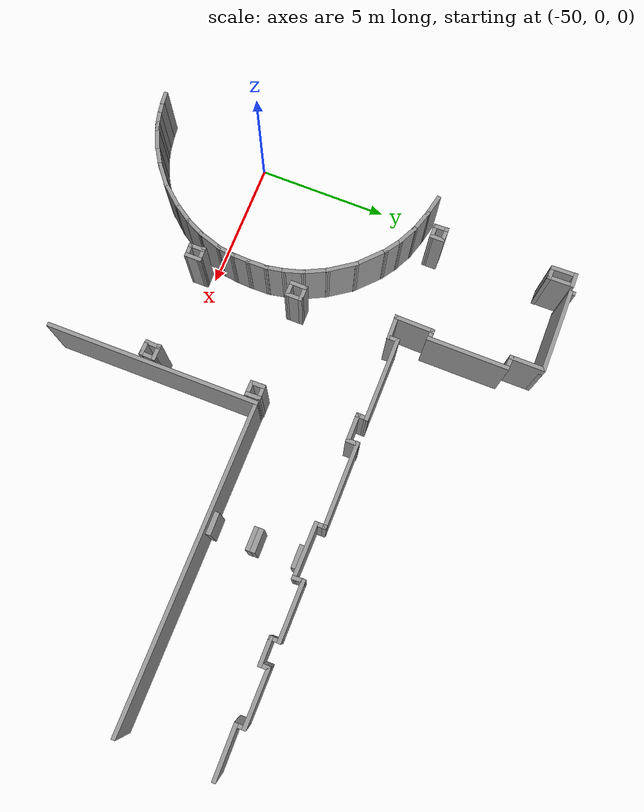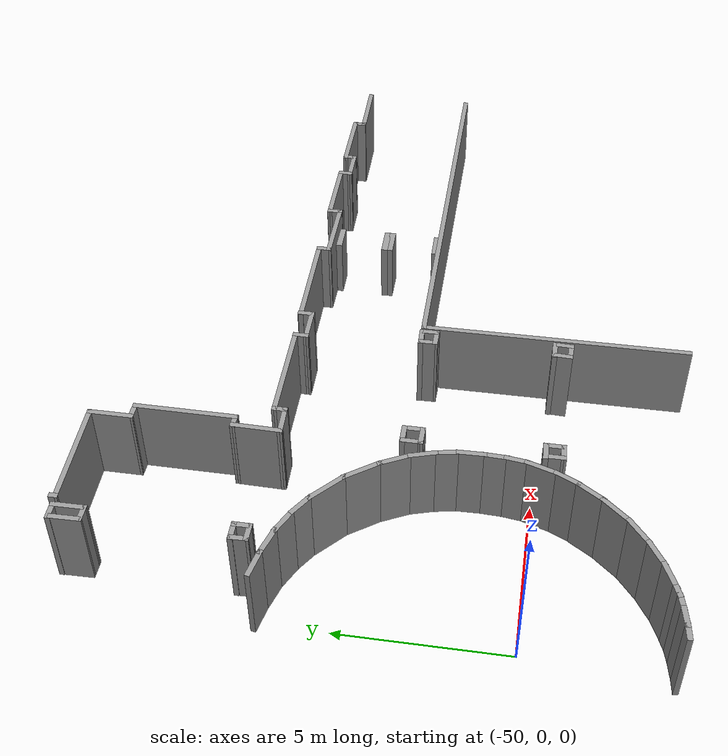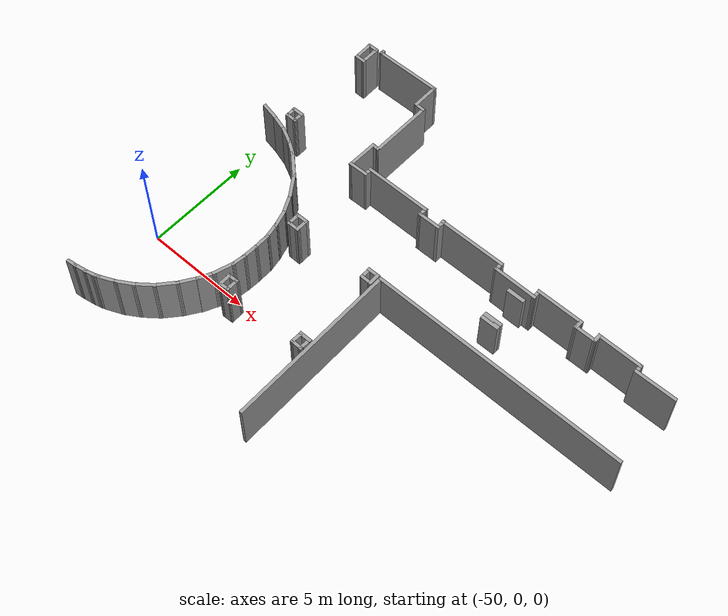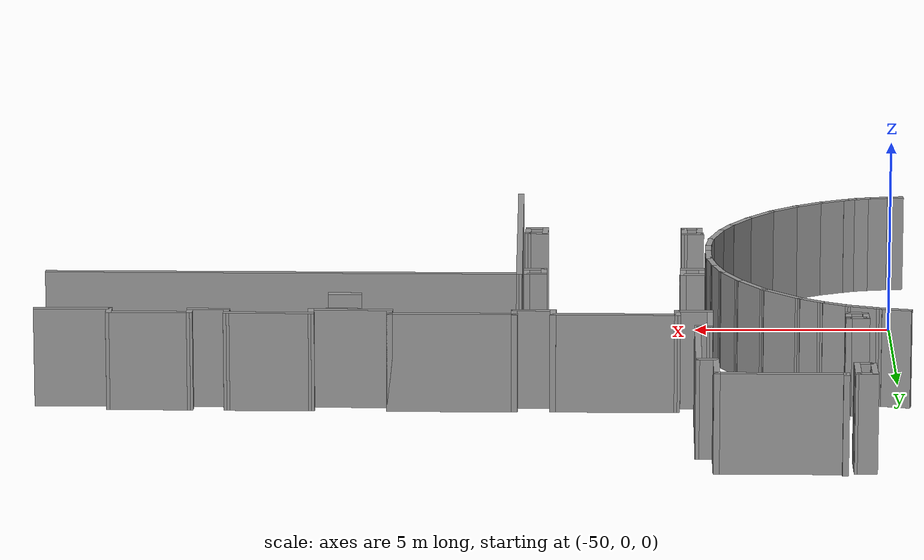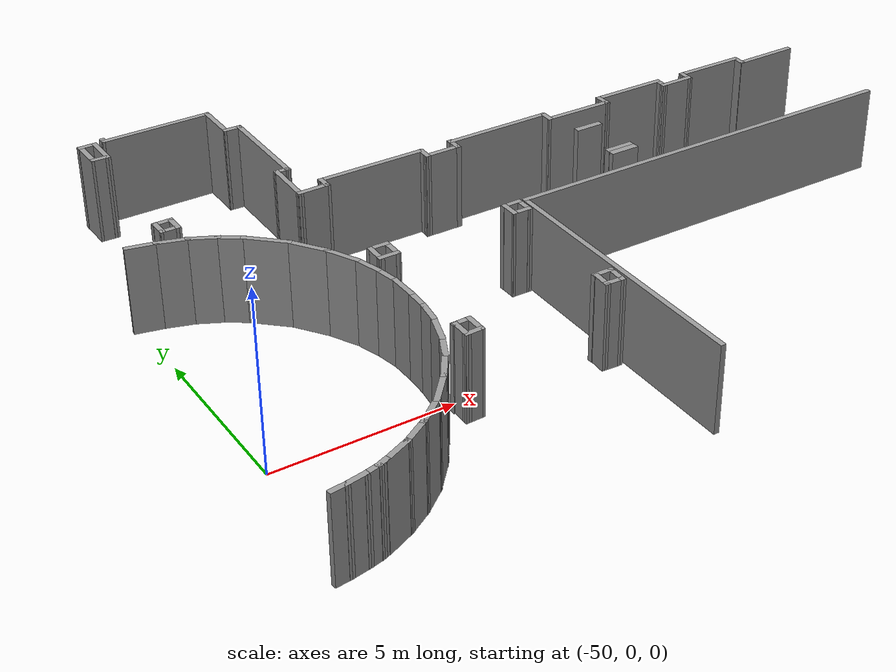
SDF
<sdf version="1.7">
 <model name="TD_n1_largo">
  <pose>-6.3187 -9.13173 0 0 -0 0</pose>
  <link name="Door_4">
   <collision name="Door_4_Collision">
    <geometry><box><size>0.870169 0.2 2</size></box></geometry>
    <pose>0 0 1 0 -0 0</pose>
   </collision>
   <visual name="Door_4_Visual">
    <pose>0 0 1 0 -0 0</pose>
    <geometry><box><size>0.870169 0.2 2</size></box></geometry>
    <material>
     <script><uri>file://media/materials/scripts/gazebo.material</uri><name>Gazebo/Grey</name></script>
    </material>
   </visual>
   <pose>-29.8088 14.4548 0 0 -0 0</pose>
  </link>
  <link name="Door_5">
   <collision name="Door_5_Collision">
    <geometry><box><size>0.870169 0.2 2</size></box></geometry>
    <pose>0 0 1 0 -0 0</pose>
   </collision>
   <visual name="Door_5_Visual">
    <pose>0 0 1 0 -0 0</pose>
    <geometry><box><size>0.870169 0.2 2</size></box></geometry>
    <material>
     <script><uri>file://media/materials/scripts/gazebo.material</uri><name>Gazebo/Grey</name></script>
    </material>
   </visual>
   <pose>-29.8146 14.6172 0 0 0 -3.13804</pose>
  </link>
  <link name="Door_6">
   <collision name="Door_6_Collision">
    <geometry><box><size>0.844427 0.2 2</size></box></geometry>
    <pose>0 0 1 0 -0 0</pose>
   </collision>
   <visual name="Door_6_Visual">
    <pose>0 0 1 0 -0 0</pose>
    <geometry><box><size>0.844427 0.2 2</size></box></geometry>
    <material>
     <script><uri>file://media/materials/scripts/gazebo.material</uri><name>Gazebo/Grey</name></script>
    </material>
   </visual>
   <pose>-29.8142 16.1237 0 0 -0 0</pose>
  </link>
  <link name="Door_7">
   <collision name="Door_7_Collision">
    <geometry><box><size>0.837107 0.2 2</size></box></geometry>
    <pose>0 0 1 0 -0 0</pose>
   </collision>
   <visual name="Door_7_Visual">
    <pose>0 0 1 0 -0 0</pose>
    <geometry><box><size>0.837107 0.2 2</size></box></geometry>
    <material>
     <script><uri>file://media/materials/scripts/gazebo.material</uri><name>Gazebo/Grey</name></script>
    </material>
   </visual>
   <pose>-29.8009 12.9774 0 0 -0 -3.12725</pose>
  </link>
  <link name="Wall_180">
   <collision name="Wall_180_Collision">
    <geometry><box><size>8.07742 0.15 2.5</size></box></geometry>
    <pose>0 0 1.25 0 -0 0</pose>
   </collision>
   <visual name="Wall_180_Visual">
    <pose>0 0 1.25 0 -0 0</pose>
    <geometry><box><size>8.07742 0.15 2.5</size></box></geometry>
    <material>
     <script><uri>file://media/materials/scripts/gazebo.material</uri><name>Gazebo/Grey</name></script>
     <ambient>1 1 1 1</ambient>
    </material>
    <meta><layer>0</layer></meta>
   </visual>
   <pose>-34.1725 8.86391 0 0 -0 1.57459</pose>
  </link>
  <link name="Wall_187">
   <collision name="Wall_187_Collision">
    <geometry><box><size>0.575823 0.15 2.5</size></box></geometry>
    <pose>0 0 1.25 0 -0 0</pose>
   </collision>
   <visual name="Wall_187_Visual">
    <pose>0 0 1.25 0 -0 0</pose>
    <geometry><box><size>0.575823 0.15 2.5</size></box></geometry>
    <material>
     <script><uri>file://media/materials/scripts/gazebo.material</uri><name>Gazebo/Grey</name></script>
     <ambient>1 1 1 1</ambient>
    </material>
    <meta><layer>0</layer></meta>
   </visual>
   <pose>-38.6109 8.87767 0 0 -0 0.026936</pose>
  </link>
  <link name="Wall_188">
   <collision name="Wall_188_Collision">
    <geometry><box><size>0.648152 0.15 2.5</size></box></geometry>
    <pose>0 0 1.25 0 -0 0</pose>
   </collision>
   <visual name="Wall_188_Visual">
    <pose>0 0 1.25 0 -0 0</pose>
    <geometry><box><size>0.648152 0.15 2.5</size></box></geometry>
    <material>
     <script><uri>file://media/materials/scripts/gazebo.material</uri><name>Gazebo/Grey</name></script>
     <ambient>1 1 1 1</ambient>
    </material>
    <meta><layer>0</layer></meta>
   </visual>
   <pose>-38.398 8.63433 0 0 -0 -1.57073</pose>
  </link>
  <link name="Wall_189">
   <collision name="Wall_189_Collision">
    <geometry><box><size>0.54572 0.15 2.5</size></box></geometry>
    <pose>0 0 1.25 0 -0 0</pose>
   </collision>
   <visual name="Wall_189_Visual">
    <pose>0 0 1.25 0 -0 0</pose>
    <geometry><box><size>0.54572 0.15 2.5</size></box></geometry>
    <material>
     <script><uri>file://media/materials/scripts/gazebo.material</uri><name>Gazebo/Grey</name></script>
     <ambient>1 1 1 1</ambient>
    </material>
    <meta><layer>0</layer></meta>
   </visual>
   <pose>-38.5957 8.37765 0 0 -0 -3.10315</pose>
  </link>
  <link name="Wall_190">
   <collision name="Wall_190_Collision">
    <geometry><box><size>0.636918 0.15 2.5</size></box></geometry>
    <pose>0 0 1.25 0 -0 0</pose>
   </collision>
   <visual name="Wall_190_Visual">
    <pose>0 0 1.25 0 -0 0</pose>
    <geometry><box><size>0.636918 0.15 2.5</size></box></geometry>
    <material>
     <script><uri>file://media/materials/scripts/gazebo.material</uri><name>Gazebo/Grey</name></script>
     <ambient>1 1 1 1</ambient>
    </material>
    <meta><layer>0</layer></meta>
   </visual>
   <pose>-38.7934 8.61338 0 0 -0 1.5708</pose>
  </link>
  <link name="Wall_234">
   <collision name="Wall_234_Collision">
    <geometry><box><size>0.257684 0.15 2.5</size></box></geometry>
    <pose>0 0 1.25 0 -0 0</pose>
   </collision>
   <visual name="Wall_234_Visual">
    <pose>0 0 1.25 0 -0 0</pose>
    <geometry><box><size>0.257684 0.15 2.5</size></box></geometry>
    <material>
     <script><uri>file://media/materials/scripts/gazebo.material</uri><name>Gazebo/Grey</name></script>
     <ambient>1 1 1 1</ambient>
    </material>
    <meta><layer>0</layer></meta>
   </visual>
   <pose>-42.0849 21.8346 0 0 -0 -1.559</pose>
  </link>
  <link name="Wall_235">
   <collision name="Wall_235_Collision">
    <geometry><box><size>3.23741 0.15 2.5</size></box></geometry>
    <pose>0 0 1.25 0 -0 0</pose>
   </collision>
   <visual name="Wall_235_Visual">
    <pose>0 0 1.25 0 -0 0</pose>
    <geometry><box><size>3.23741 0.15 2.5</size></box></geometry>
    <material>
     <script><uri>file://media/materials/scripts/gazebo.material</uri><name>Gazebo/Grey</name></script>
     <ambient>1 1 1 1</ambient>
    </material>
    <meta><layer>0</layer></meta>
   </visual>
   <pose>-40.5406 21.7808 0 0 -0 0</pose>
  </link>
  <link name="Wall_236">
   <collision name="Wall_236_Collision">
    <geometry><box><size>1.35149 0.15 2.5</size></box></geometry>
    <pose>0 0 1.25 0 -0 0</pose>
   </collision>
   <visual name="Wall_236_Visual">
    <pose>0 0 1.25 0 -0 0</pose>
    <geometry><box><size>1.35149 0.15 2.5</size></box></geometry>
    <material>
     <script><uri>file://media/materials/scripts/gazebo.material</uri><name>Gazebo/Grey</name></script>
     <ambient>1 1 1 1</ambient>
    </material>
    <meta><layer>0</layer></meta>
   </visual>
   <pose>-38.9969 21.1801 0 0 -0 -1.5708</pose>
  </link>
  <link name="Wall_237">
   <collision name="Wall_237_Collision">
    <geometry><box><size>0.545258 0.15 2.5</size></box></geometry>
    <pose>0 0 1.25 0 -0 0</pose>
   </collision>
   <visual name="Wall_237_Visual">
    <pose>0 0 1.25 0 -0 0</pose>
    <geometry><box><size>0.545258 0.15 2.5</size></box></geometry>
    <material>
     <script><uri>file://media/materials/scripts/gazebo.material</uri><name>Gazebo/Grey</name></script>
     <ambient>1 1 1 1</ambient>
    </material>
    <meta><layer>0</layer></meta>
   </visual>
   <pose>-38.7995 20.5705 0 0 -0 -0.044556</pose>
  </link>
  <link name="Wall_245">
   <collision name="Wall_245_Collision">
    <geometry><box><size>0.561702 0.15 2.5</size></box></geometry>
    <pose>0 0 1.25 0 -0 0</pose>
   </collision>
   <visual name="Wall_245_Visual">
    <pose>0 0 1.25 0 -0 0</pose>
    <geometry><box><size>0.561702 0.15 2.5</size></box></geometry>
    <material>
     <script><uri>file://media/materials/scripts/gazebo.material</uri><name>Gazebo/Grey</name></script>
     <ambient>1 1 1 1</ambient>
    </material>
    <meta><layer>0</layer></meta>
   </visual>
   <pose>-42.5781 21.755 0 0 -0 0</pose>
  </link>
  <link name="Wall_246">
   <collision name="Wall_246_Collision">
    <geometry><box><size>1.01337 0.15 2.5</size></box></geometry>
    <pose>0 0 1.25 0 -0 0</pose>
   </collision>
   <visual name="Wall_246_Visual">
    <pose>0 0 1.25 0 -0 0</pose>
    <geometry><box><size>1.01337 0.15 2.5</size></box></geometry>
    <material>
     <script><uri>file://media/materials/scripts/gazebo.material</uri><name>Gazebo/Grey</name></script>
     <ambient>1 1 1 1</ambient>
    </material>
    <meta><layer>0</layer></meta>
   </visual>
   <pose>-42.3695 21.3233 0 0 -0 -1.56417</pose>
  </link>
  <link name="Wall_247">
   <collision name="Wall_247_Collision">
    <geometry><box><size>0.544675 0.15 2.5</size></box></geometry>
    <pose>0 0 1.25 0 -0 0</pose>
   </collision>
   <visual name="Wall_247_Visual">
    <pose>0 0 1.25 0 -0 0</pose>
    <geometry><box><size>0.544675 0.15 2.5</size></box></geometry>
    <material>
     <script><uri>file://media/materials/scripts/gazebo.material</uri><name>Gazebo/Grey</name></script>
     <ambient>1 1 1 1</ambient>
    </material>
    <meta><layer>0</layer></meta>
   </visual>
   <pose>-42.5581 20.8974 0 0 -0 3.11261</pose>
  </link>
  <link name="Wall_248">
   <collision name="Wall_248_Collision">
    <geometry><box><size>0.933385 0.15 2.5</size></box></geometry>
    <pose>0 0 1.25 0 -0 0</pose>
   </collision>
   <visual name="Wall_248_Visual">
    <pose>0 0 1.25 0 -0 0</pose>
    <geometry><box><size>0.933385 0.15 2.5</size></box></geometry>
    <material>
     <script><uri>file://media/materials/scripts/gazebo.material</uri><name>Gazebo/Grey</name></script>
     <ambient>1 1 1 1</ambient>
    </material>
    <meta><layer>0</layer></meta>
   </visual>
   <pose>-42.7668 21.2947 0 0 -0 1.58539</pose>
  </link>
  <link name="Wall_255">
   <collision name="Wall_255_Collision">
    <geometry><box><size>0.588563 0.15 2.5</size></box></geometry>
    <pose>0 0 1.25 0 -0 0</pose>
   </collision>
   <visual name="Wall_255_Visual">
    <pose>0 0 1.25 0 -0 0</pose>
    <geometry><box><size>0.588563 0.15 2.5</size></box></geometry>
    <material>
     <script><uri>file://media/materials/scripts/gazebo.material</uri><name>Gazebo/Grey</name></script>
     <ambient>1 1 1 1</ambient>
    </material>
    <meta><layer>0</layer></meta>
   </visual>
   <pose>-42.5487 16.8302 0 0 -0 0</pose>
  </link>
  <link name="Wall_256">
   <collision name="Wall_256_Collision">
    <geometry><box><size>0.57344 0.15 2.5</size></box></geometry>
    <pose>0 0 1.25 0 -0 0</pose>
   </collision>
   <visual name="Wall_256_Visual">
    <pose>0 0 1.25 0 -0 0</pose>
    <geometry><box><size>0.57344 0.15 2.5</size></box></geometry>
    <material>
     <script><uri>file://media/materials/scripts/gazebo.material</uri><name>Gazebo/Grey</name></script>
     <ambient>1 1 1 1</ambient>
    </material>
    <meta><layer>0</layer></meta>
   </visual>
   <pose>-42.3294 16.6185 0 0 -0 -1.5708</pose>
  </link>
  <link name="Wall_257">
   <collision name="Wall_257_Collision">
    <geometry><box><size>0.572519 0.15 2.5</size></box></geometry>
    <pose>0 0 1.25 0 -0 0</pose>
   </collision>
   <visual name="Wall_257_Visual">
    <pose>0 0 1.25 0 -0 0</pose>
    <geometry><box><size>0.572519 0.15 2.5</size></box></geometry>
    <material>
     <script><uri>file://media/materials/scripts/gazebo.material</uri><name>Gazebo/Grey</name></script>
     <ambient>1 1 1 1</ambient>
    </material>
    <meta><layer>0</layer></meta>
   </visual>
   <pose>-42.5407 16.408 0 0 -0 3.13605</pose>
  </link>
  <link name="Wall_258">
   <collision name="Wall_258_Collision">
    <geometry><box><size>0.567747 0.15 2.5</size></box></geometry>
    <pose>0 0 1.25 0 -0 0</pose>
   </collision>
   <visual name="Wall_258_Visual">
    <pose>0 0 1.25 0 -0 0</pose>
    <geometry><box><size>0.567747 0.15 2.5</size></box></geometry>
    <material>
     <script><uri>file://media/materials/scripts/gazebo.material</uri><name>Gazebo/Grey</name></script>
     <ambient>1 1 1 1</ambient>
    </material>
    <meta><layer>0</layer></meta>
   </visual>
   <pose>-42.7569 16.618 0 0 -0 1.5946</pose>
  </link>
  <link name="Wall_259">
   <collision name="Wall_259_Collision">
    <geometry><box><size>0.15 0.15 2.5</size></box></geometry>
    <pose>0 0 1.25 0 -0 0</pose>
   </collision>
   <visual name="Wall_259_Visual">
    <pose>0 0 1.25 0 -0 0</pose>
    <geometry><box><size>0.15 0.15 2.5</size></box></geometry>
    <material>
     <script><uri>file://media/materials/scripts/gazebo.material</uri><name>Gazebo/Grey</name></script>
     <ambient>1 1 1 1</ambient>
    </material>
    <meta><layer>0</layer></meta>
   </visual>
   <pose>-42.7619 16.8268 0 0 -0 0</pose>
  </link>
  <link name="Wall_271">
   <collision name="Wall_271_Collision">
    <geometry><box><size>0.613049 0.15 2.5</size></box></geometry>
    <pose>0 0 1.25 0 -0 0</pose>
   </collision>
   <visual name="Wall_271_Visual">
    <pose>0 0 1.25 0 -0 0</pose>
    <geometry><box><size>0.613049 0.15 2.5</size></box></geometry>
    <material>
     <script><uri>file://media/materials/scripts/gazebo.material</uri><name>Gazebo/Grey</name></script>
     <ambient>1 1 1 1</ambient>
    </material>
    <meta><layer>0</layer></meta>
   </visual>
   <pose>-38.5461 12.8584 0 0 -0 0</pose>
  </link>
  <link name="Wall_272">
   <collision name="Wall_272_Collision">
    <geometry><box><size>0.67334 0.15 2.5</size></box></geometry>
    <pose>0 0 1.25 0 -0 0</pose>
   </collision>
   <visual name="Wall_272_Visual">
    <pose>0 0 1.25 0 -0 0</pose>
    <geometry><box><size>0.67334 0.15 2.5</size></box></geometry>
    <material>
     <script><uri>file://media/materials/scripts/gazebo.material</uri><name>Gazebo/Grey</name></script>
     <ambient>1 1 1 1</ambient>
    </material>
    <meta><layer>0</layer></meta>
   </visual>
   <pose>-38.3148 12.5969 0 0 -0 -1.5708</pose>
  </link>
  <link name="Wall_273">
   <collision name="Wall_273_Collision">
    <geometry><box><size>0.618124 0.15 2.5</size></box></geometry>
    <pose>0 0 1.25 0 -0 0</pose>
   </collision>
   <visual name="Wall_273_Visual">
    <pose>0 0 1.25 0 -0 0</pose>
    <geometry><box><size>0.618124 0.15 2.5</size></box></geometry>
    <material>
     <script><uri>file://media/materials/scripts/gazebo.material</uri><name>Gazebo/Grey</name></script>
     <ambient>1 1 1 1</ambient>
    </material>
    <meta><layer>0</layer></meta>
   </visual>
   <pose>-38.5488 12.3378 0 0 -0 3.13182</pose>
  </link>
  <link name="Wall_274">
   <collision name="Wall_274_Collision">
    <geometry><box><size>0.649885 0.15 2.5</size></box></geometry>
    <pose>0 0 1.25 0 -0 0</pose>
   </collision>
   <visual name="Wall_274_Visual">
    <pose>0 0 1.25 0 -0 0</pose>
    <geometry><box><size>0.649885 0.15 2.5</size></box></geometry>
    <material>
     <script><uri>file://media/materials/scripts/gazebo.material</uri><name>Gazebo/Grey</name></script>
     <ambient>1 1 1 1</ambient>
    </material>
    <meta><layer>0</layer></meta>
   </visual>
   <pose>-38.7796 12.5899 0 0 -0 1.55764</pose>
  </link>
  <link name="Wall_276">
   <collision name="Wall_276_Collision">
    <geometry><box><size>0.590536 0.15 2.5</size></box></geometry>
    <pose>0 0 1.25 0 -0 0</pose>
   </collision>
   <visual name="Wall_276_Visual">
    <pose>0 0 1.25 0 -0 0</pose>
    <geometry><box><size>0.590536 0.15 2.5</size></box></geometry>
    <material>
     <script><uri>file://media/materials/scripts/gazebo.material</uri><name>Gazebo/Grey</name></script>
     <ambient>1 1 1 1</ambient>
    </material>
    <meta><layer>0</layer></meta>
   </visual>
   <pose>-34.5978 12.8496 0 0 -0 0.014924</pose>
  </link>
  <link name="Wall_277">
   <collision name="Wall_277_Collision">
    <geometry><box><size>0.597159 0.15 2.5</size></box></geometry>
    <pose>0 0 1.25 0 -0 0</pose>
   </collision>
   <visual name="Wall_277_Visual">
    <pose>0 0 1.25 0 -0 0</pose>
    <geometry><box><size>0.597159 0.15 2.5</size></box></geometry>
    <material>
     <script><uri>file://media/materials/scripts/gazebo.material</uri><name>Gazebo/Grey</name></script>
     <ambient>1 1 1 1</ambient>
    </material>
    <meta><layer>0</layer></meta>
   </visual>
   <pose>-34.3742 12.6294 0 0 -0 -1.55609</pose>
  </link>
  <link name="Wall_278">
   <collision name="Wall_278_Collision">
    <geometry><box><size>0.583961 0.15 2.5</size></box></geometry>
    <pose>0 0 1.25 0 -0 0</pose>
   </collision>
   <visual name="Wall_278_Visual">
    <pose>0 0 1.25 0 -0 0</pose>
    <geometry><box><size>0.583961 0.15 2.5</size></box></geometry>
    <material>
     <script><uri>file://media/materials/scripts/gazebo.material</uri><name>Gazebo/Grey</name></script>
     <ambient>1 1 1 1</ambient>
    </material>
    <meta><layer>0</layer></meta>
   </visual>
   <pose>-34.5879 12.4091 0 0 -0 3.12644</pose>
  </link>
  <link name="Wall_279">
   <collision name="Wall_279_Collision">
    <geometry><box><size>0.577436 0.15 2.5</size></box></geometry>
    <pose>0 0 1.25 0 -0 0</pose>
   </collision>
   <visual name="Wall_279_Visual">
    <pose>0 0 1.25 0 -0 0</pose>
    <geometry><box><size>0.577436 0.15 2.5</size></box></geometry>
    <material>
     <script><uri>file://media/materials/scripts/gazebo.material</uri><name>Gazebo/Grey</name></script>
     <ambient>1 1 1 1</ambient>
    </material>
    <meta><layer>0</layer></meta>
   </visual>
   <pose>-34.8082 12.6261 0 0 -0 1.58618</pose>
  </link>
  <link name="Wall_286">
   <collision name="Wall_286_Collision">
    <geometry><box><size>0.510873 0.15 2.5</size></box></geometry>
    <pose>0 0 1.25 0 -0 0</pose>
   </collision>
   <visual name="Wall_286_Visual">
    <pose>0 0 1.25 0 -0 0</pose>
    <geometry><box><size>0.510873 0.15 2.5</size></box></geometry>
    <material>
     <script><uri>file://media/materials/scripts/gazebo.material</uri><name>Gazebo/Grey</name></script>
     <ambient>1 1 1 1</ambient>
    </material>
    <meta><layer>0</layer></meta>
   </visual>
   <pose>-43.9551 5.04752 0 0 -0 0.116709</pose>
  </link>
  <link name="Wall_287">
   <collision name="Wall_287_Collision">
    <geometry><box><size>0.662484 0.15 2.5</size></box></geometry>
    <pose>0 0 1.25 0 -0 0</pose>
   </collision>
   <visual name="Wall_287_Visual">
    <pose>0 0 1.25 0 -0 0</pose>
    <geometry><box><size>0.662484 0.15 2.5</size></box></geometry>
    <material>
     <script><uri>file://media/materials/scripts/gazebo.material</uri><name>Gazebo/Grey</name></script>
     <ambient>1 1 1 1</ambient>
    </material>
    <meta><layer>0</layer></meta>
   </visual>
   <pose>-43.5238 5.11426 0 0 -0 0.179422</pose>
  </link>
  <link name="Wall_288">
   <collision name="Wall_288_Collision">
    <geometry><box><size>0.534291 0.15 2.5</size></box></geometry>
    <pose>0 0 1.25 0 -0 0</pose>
   </collision>
   <visual name="Wall_288_Visual">
    <pose>0 0 1.25 0 -0 0</pose>
    <geometry><box><size>0.534291 0.15 2.5</size></box></geometry>
    <material>
     <script><uri>file://media/materials/scripts/gazebo.material</uri><name>Gazebo/Grey</name></script>
     <ambient>1 1 1 1</ambient>
    </material>
    <meta><layer>0</layer></meta>
   </visual>
   <pose>-43.085 5.20572 0 0 -0 0.240299</pose>
  </link>
  <link name="Wall_289">
   <collision name="Wall_289_Collision">
    <geometry><box><size>0.389603 0.15 2.5</size></box></geometry>
    <pose>0 0 1.25 0 -0 0</pose>
   </collision>
   <visual name="Wall_289_Visual">
    <pose>0 0 1.25 0 -0 0</pose>
    <geometry><box><size>0.389603 0.15 2.5</size></box></geometry>
    <material>
     <script><uri>file://media/materials/scripts/gazebo.material</uri><name>Gazebo/Grey</name></script>
     <ambient>1 1 1 1</ambient>
    </material>
    <meta><layer>0</layer></meta>
   </visual>
   <pose>-42.7871 5.29594 0 0 -0 0.380506</pose>
  </link>
  <link name="Wall_291">
   <collision name="Wall_291_Collision">
    <geometry><box><size>0.906401 0.15 2.5</size></box></geometry>
    <pose>0 0 1.25 0 -0 0</pose>
   </collision>
   <visual name="Wall_291_Visual">
    <pose>0 0 1.25 0 -0 0</pose>
    <geometry><box><size>0.906401 0.15 2.5</size></box></geometry>
    <material>
     <script><uri>file://media/materials/scripts/gazebo.material</uri><name>Gazebo/Grey</name></script>
     <ambient>1 1 1 1</ambient>
    </material>
    <meta><layer>0</layer></meta>
   </visual>
   <pose>-42.3342 5.4858 0 0 -0 0.420872</pose>
  </link>
  <link name="Wall_292">
   <collision name="Wall_292_Collision">
    <geometry><box><size>0.899943 0.15 2.5</size></box></geometry>
    <pose>0 0 1.25 0 -0 0</pose>
   </collision>
   <visual name="Wall_292_Visual">
    <pose>0 0 1.25 0 -0 0</pose>
    <geometry><box><size>0.899943 0.15 2.5</size></box></geometry>
    <material>
     <script><uri>file://media/materials/scripts/gazebo.material</uri><name>Gazebo/Grey</name></script>
     <ambient>1 1 1 1</ambient>
    </material>
    <meta><layer>0</layer></meta>
   </visual>
   <pose>-41.6701 5.83757 0 0 -0 0.553953</pose>
  </link>
  <link name="Wall_293">
   <collision name="Wall_293_Collision">
    <geometry><box><size>0.977661 0.15 2.5</size></box></geometry>
    <pose>0 0 1.25 0 -0 0</pose>
   </collision>
   <visual name="Wall_293_Visual">
    <pose>0 0 1.25 0 -0 0</pose>
    <geometry><box><size>0.977661 0.15 2.5</size></box></geometry>
    <material>
     <script><uri>file://media/materials/scripts/gazebo.material</uri><name>Gazebo/Grey</name></script>
     <ambient>1 1 1 1</ambient>
    </material>
    <meta><layer>0</layer></meta>
   </visual>
   <pose>-41.029 6.29455 0 0 -0 0.678463</pose>
  </link>
  <link name="Wall_294">
   <collision name="Wall_294_Collision">
    <geometry><box><size>1.07287 0.15 2.5</size></box></geometry>
    <pose>0 0 1.25 0 -0 0</pose>
   </collision>
   <visual name="Wall_294_Visual">
    <pose>0 0 1.25 0 -0 0</pose>
    <geometry><box><size>1.07287 0.15 2.5</size></box></geometry>
    <material>
     <script><uri>file://media/materials/scripts/gazebo.material</uri><name>Gazebo/Grey</name></script>
     <ambient>1 1 1 1</ambient>
    </material>
    <meta><layer>0</layer></meta>
   </visual>
   <pose>-40.4044 6.90275 0 0 -0 0.855988</pose>
  </link>
  <link name="Wall_295">
   <collision name="Wall_295_Collision">
    <geometry><box><size>0.928706 0.15 2.5</size></box></geometry>
    <pose>0 0 1.25 0 -0 0</pose>
   </collision>
   <visual name="Wall_295_Visual">
    <pose>0 0 1.25 0 -0 0</pose>
    <geometry><box><size>0.928706 0.15 2.5</size></box></geometry>
    <material>
     <script><uri>file://media/materials/scripts/gazebo.material</uri><name>Gazebo/Grey</name></script>
     <ambient>1 1 1 1</ambient>
    </material>
    <meta><layer>0</layer></meta>
   </visual>
   <pose>-39.8882 7.5767 0 0 -0 0.989819</pose>
  </link>
  <link name="Wall_297">
   <collision name="Wall_297_Collision">
    <geometry><box><size>0.824345 0.15 2.5</size></box></geometry>
    <pose>0 0 1.25 0 -0 0</pose>
   </collision>
   <visual name="Wall_297_Visual">
    <pose>0 0 1.25 0 -0 0</pose>
    <geometry><box><size>0.824345 0.15 2.5</size></box></geometry>
    <material>
     <script><uri>file://media/materials/scripts/gazebo.material</uri><name>Gazebo/Grey</name></script>
     <ambient>1 1 1 1</ambient>
    </material>
    <meta><layer>0</layer></meta>
   </visual>
   <pose>-39.4974 8.23667 0 0 -0 1.12469</pose>
  </link>
  <link name="Wall_298">
   <collision name="Wall_298_Collision">
    <geometry><box><size>1.01156 0.15 2.5</size></box></geometry>
    <pose>0 0 1.25 0 -0 0</pose>
   </collision>
   <visual name="Wall_298_Visual">
    <pose>0 0 1.25 0 -0 0</pose>
    <geometry><box><size>1.01156 0.15 2.5</size></box></geometry>
    <material>
     <script><uri>file://media/materials/scripts/gazebo.material</uri><name>Gazebo/Grey</name></script>
     <ambient>1 1 1 1</ambient>
    </material>
    <meta><layer>0</layer></meta>
   </visual>
   <pose>-39.2197 8.95082 0 0 -0 1.25875</pose>
  </link>
  <link name="Wall_299">
   <collision name="Wall_299_Collision">
    <geometry><box><size>0.724184 0.15 2.5</size></box></geometry>
    <pose>0 0 1.25 0 -0 0</pose>
   </collision>
   <visual name="Wall_299_Visual">
    <pose>0 0 1.25 0 -0 0</pose>
    <geometry><box><size>0.724184 0.15 2.5</size></box></geometry>
    <material>
     <script><uri>file://media/materials/scripts/gazebo.material</uri><name>Gazebo/Grey</name></script>
     <ambient>1 1 1 1</ambient>
    </material>
    <meta><layer>0</layer></meta>
   </visual>
   <pose>-39.0478 9.64513 0 0 -0 1.43216</pose>
  </link>
  <link name="Wall_300">
   <collision name="Wall_300_Collision">
    <geometry><box><size>0.772138 0.15 2.5</size></box></geometry>
    <pose>0 0 1.25 0 -0 0</pose>
   </collision>
   <visual name="Wall_300_Visual">
    <pose>0 0 1.25 0 -0 0</pose>
    <geometry><box><size>0.772138 0.15 2.5</size></box></geometry>
    <material>
     <script><uri>file://media/materials/scripts/gazebo.material</uri><name>Gazebo/Grey</name></script>
     <ambient>1 1 1 1</ambient>
    </material>
    <meta><layer>0</layer></meta>
   </visual>
   <pose>-38.9949 10.2403 0 0 -0 1.52827</pose>
  </link>
  <link name="Wall_301">
   <collision name="Wall_301_Collision">
    <geometry><box><size>0.851424 0.15 2.5</size></box></geometry>
    <pose>0 0 1.25 0 -0 0</pose>
   </collision>
   <visual name="Wall_301_Visual">
    <pose>0 0 1.25 0 -0 0</pose>
    <geometry><box><size>0.851424 0.15 2.5</size></box></geometry>
    <material>
     <script><uri>file://media/materials/scripts/gazebo.material</uri><name>Gazebo/Grey</name></script>
     <ambient>1 1 1 1</ambient>
    </material>
    <meta><layer>0</layer></meta>
   </visual>
   <pose>-38.9882 10.9015 0 0 -0 1.58966</pose>
  </link>
  <link name="Wall_302">
   <collision name="Wall_302_Collision">
    <geometry><box><size>0.795862 0.15 2.5</size></box></geometry>
    <pose>0 0 1.25 0 -0 0</pose>
   </collision>
   <visual name="Wall_302_Visual">
    <pose>0 0 1.25 0 -0 0</pose>
    <geometry><box><size>0.795862 0.15 2.5</size></box></geometry>
    <material>
     <script><uri>file://media/materials/scripts/gazebo.material</uri><name>Gazebo/Grey</name></script>
     <ambient>1 1 1 1</ambient>
    </material>
    <meta><layer>0</layer></meta>
   </visual>
   <pose>-39.0544 11.5694 0 0 -0 1.75614</pose>
  </link>
  <link name="Wall_303">
   <collision name="Wall_303_Collision">
    <geometry><box><size>0.853043 0.15 2.5</size></box></geometry>
    <pose>0 0 1.25 0 -0 0</pose>
   </collision>
   <visual name="Wall_303_Visual">
    <pose>0 0 1.25 0 -0 0</pose>
    <geometry><box><size>0.853043 0.15 2.5</size></box></geometry>
    <material>
     <script><uri>file://media/materials/scripts/gazebo.material</uri><name>Gazebo/Grey</name></script>
     <ambient>1 1 1 1</ambient>
    </material>
    <meta><layer>0</layer></meta>
   </visual>
   <pose>-39.2131 12.224 0 0 -0 1.85685</pose>
  </link>
  <link name="Wall_305">
   <collision name="Wall_305_Collision">
    <geometry><box><size>1.03748 0.15 2.5</size></box></geometry>
    <pose>0 0 1.25 0 -0 0</pose>
   </collision>
   <visual name="Wall_305_Visual">
    <pose>0 0 1.25 0 -0 0</pose>
    <geometry><box><size>1.03748 0.15 2.5</size></box></geometry>
    <material>
     <script><uri>file://media/materials/scripts/gazebo.material</uri><name>Gazebo/Grey</name></script>
     <ambient>1 1 1 1</ambient>
    </material>
    <meta><layer>0</layer></meta>
   </visual>
   <pose>-39.5094 12.9588 0 0 -0 2.03126</pose>
  </link>
  <link name="Wall_306">
   <collision name="Wall_306_Collision">
    <geometry><box><size>1.21857 0.15 2.5</size></box></geometry>
    <pose>0 0 1.25 0 -0 0</pose>
   </collision>
   <visual name="Wall_306_Visual">
    <pose>0 0 1.25 0 -0 0</pose>
    <geometry><box><size>1.21857 0.15 2.5</size></box></geometry>
    <material>
     <script><uri>file://media/materials/scripts/gazebo.material</uri><name>Gazebo/Grey</name></script>
     <ambient>1 1 1 1</ambient>
    </material>
    <meta><layer>0</layer></meta>
   </visual>
   <pose>-40.011 13.7954 0 0 -0 2.17686</pose>
  </link>
  <link name="Wall_307">
   <collision name="Wall_307_Collision">
    <geometry><box><size>1.31885 0.15 2.5</size></box></geometry>
    <pose>0 0 1.25 0 -0 0</pose>
   </collision>
   <visual name="Wall_307_Visual">
    <pose>0 0 1.25 0 -0 0</pose>
    <geometry><box><size>1.31885 0.15 2.5</size></box></geometry>
    <material>
     <script><uri>file://media/materials/scripts/gazebo.material</uri><name>Gazebo/Grey</name></script>
     <ambient>1 1 1 1</ambient>
    </material>
    <meta><layer>0</layer></meta>
   </visual>
   <pose>-40.7414 14.6345 0 0 -0 2.38776</pose>
  </link>
  <link name="Wall_308">
   <collision name="Wall_308_Collision">
    <geometry><box><size>0.801188 0.15 2.5</size></box></geometry>
    <pose>0 0 1.25 0 -0 0</pose>
   </collision>
   <visual name="Wall_308_Visual">
    <pose>0 0 1.25 0 -0 0</pose>
    <geometry><box><size>0.801188 0.15 2.5</size></box></geometry>
    <material>
     <script><uri>file://media/materials/scripts/gazebo.material</uri><name>Gazebo/Grey</name></script>
     <ambient>1 1 1 1</ambient>
    </material>
    <meta><layer>0</layer></meta>
   </visual>
   <pose>-41.4371 15.2172 0 0 -0 2.54618</pose>
  </link>
  <link name="Wall_309">
   <collision name="Wall_309_Collision">
    <geometry><box><size>0.888875 0.15 2.5</size></box></geometry>
    <pose>0 0 1.25 0 -0 0</pose>
   </collision>
   <visual name="Wall_309_Visual">
    <pose>0 0 1.25 0 -0 0</pose>
    <geometry><box><size>0.888875 0.15 2.5</size></box></geometry>
    <material>
     <script><uri>file://media/materials/scripts/gazebo.material</uri><name>Gazebo/Grey</name></script>
     <ambient>1 1 1 1</ambient>
    </material>
    <meta><layer>0</layer></meta>
   </visual>
   <pose>-42.0371 15.565 0 0 -0 2.67794</pose>
  </link>
  <link name="Wall_310">
   <collision name="Wall_310_Collision">
    <geometry><box><size>0.942116 0.15 2.5</size></box></geometry>
    <pose>0 0 1.25 0 -0 0</pose>
   </collision>
   <visual name="Wall_310_Visual">
    <pose>0 0 1.25 0 -0 0</pose>
    <geometry><box><size>0.942116 0.15 2.5</size></box></geometry>
    <material>
     <script><uri>file://media/materials/scripts/gazebo.material</uri><name>Gazebo/Grey</name></script>
     <ambient>1 1 1 1</ambient>
    </material>
    <meta><layer>0</layer></meta>
   </visual>
   <pose>-42.7458 15.8476 0 0 -0 2.84067</pose>
  </link>
  <link name="Wall_311">
   <collision name="Wall_311_Collision">
    <geometry><box><size>0.880021 0.15 2.5</size></box></geometry>
    <pose>0 0 1.25 0 -0 0</pose>
   </collision>
   <visual name="Wall_311_Visual">
    <pose>0 0 1.25 0 -0 0</pose>
    <geometry><box><size>0.880021 0.15 2.5</size></box></geometry>
    <material>
     <script><uri>file://media/materials/scripts/gazebo.material</uri><name>Gazebo/Grey</name></script>
     <ambient>1 1 1 1</ambient>
    </material>
    <meta><layer>0</layer></meta>
   </visual>
   <pose>-43.4805 16.0432 0 0 -0 2.92551</pose>
  </link>
  <link name="Wall_346">
   <collision name="Wall_346_Collision">
    <geometry><box><size>3.07275 0.15 2.5</size></box></geometry>
    <pose>0 0 1.25 0 -0 0</pose>
   </collision>
   <visual name="Wall_346_Visual">
    <pose>0 0 1.25 0 -0 0</pose>
    <geometry><box><size>3.07275 0.15 2.5</size></box></geometry>
    <material>
     <script><uri>file://media/materials/scripts/gazebo.material</uri><name>Gazebo/Grey</name></script>
     <ambient>1 1 1 1</ambient>
    </material>
    <meta><layer>0</layer></meta>
   </visual>
   <pose>-38.5912 19.1004 0 0 -0 -1.57532</pose>
  </link>
  <link name="Wall_347">
   <collision name="Wall_347_Collision">
    <geometry><box><size>0.43636 0.15 2.5</size></box></geometry>
    <pose>0 0 1.25 0 -0 0</pose>
   </collision>
   <visual name="Wall_347_Visual">
    <pose>0 0 1.25 0 -0 0</pose>
    <geometry><box><size>0.43636 0.15 2.5</size></box></geometry>
    <material>
     <script><uri>file://media/materials/scripts/gazebo.material</uri><name>Gazebo/Grey</name></script>
     <ambient>1 1 1 1</ambient>
    </material>
    <meta><layer>0</layer></meta>
   </visual>
   <pose>-38.7582 17.6477 0 0 -0 3.08048</pose>
  </link>
  <link name="Wall_348">
   <collision name="Wall_348_Collision">
    <geometry><box><size>1.51243 0.15 2.5</size></box></geometry>
    <pose>0 0 1.25 0 -0 0</pose>
   </collision>
   <visual name="Wall_348_Visual">
    <pose>0 0 1.25 0 -0 0</pose>
    <geometry><box><size>1.51243 0.15 2.5</size></box></geometry>
    <material>
     <script><uri>file://media/materials/scripts/gazebo.material</uri><name>Gazebo/Grey</name></script>
     <ambient>1 1 1 1</ambient>
    </material>
    <meta><layer>0</layer></meta>
   </visual>
   <pose>-38.9143 16.9754 0 0 -0 -1.59021</pose>
  </link>
  <link name="Wall_349">
   <collision name="Wall_349_Collision">
    <geometry><box><size>0.952511 0.15 2.5</size></box></geometry>
    <pose>0 0 1.25 0 -0 0</pose>
   </collision>
   <visual name="Wall_349_Visual">
    <pose>0 0 1.25 0 -0 0</pose>
    <geometry><box><size>0.952511 0.15 2.5</size></box></geometry>
    <material>
     <script><uri>file://media/materials/scripts/gazebo.material</uri><name>Gazebo/Grey</name></script>
     <ambient>1 1 1 1</ambient>
    </material>
    <meta><layer>0</layer></meta>
   </visual>
   <pose>-38.5264 16.3009 0 0 -0 0.01648</pose>
  </link>
  <link name="Wall_350">
   <collision name="Wall_350_Collision">
    <geometry><box><size>0.463407 0.15 2.5</size></box></geometry>
    <pose>0 0 1.25 0 -0 0</pose>
   </collision>
   <visual name="Wall_350_Visual">
    <pose>0 0 1.25 0 -0 0</pose>
    <geometry><box><size>0.463407 0.15 2.5</size></box></geometry>
    <material>
     <script><uri>file://media/materials/scripts/gazebo.material</uri><name>Gazebo/Grey</name></script>
     <ambient>1 1 1 1</ambient>
    </material>
    <meta><layer>0</layer></meta>
   </visual>
   <pose>-38.1218 16.4642 0 0 -0 1.57713</pose>
  </link>
  <link name="Wall_351">
   <collision name="Wall_351_Collision">
    <geometry><box><size>3.21537 0.15 2.5</size></box></geometry>
    <pose>0 0 1.25 0 -0 0</pose>
   </collision>
   <visual name="Wall_351_Visual">
    <pose>0 0 1.25 0 -0 0</pose>
    <geometry><box><size>3.21537 0.15 2.5</size></box></geometry>
    <material>
     <script><uri>file://media/materials/scripts/gazebo.material</uri><name>Gazebo/Grey</name></script>
     <ambient>1 1 1 1</ambient>
    </material>
    <meta><layer>0</layer></meta>
   </visual>
   <pose>-36.5902 16.614 0 0 -0 -0.004505</pose>
  </link>
  <link name="Wall_352">
   <collision name="Wall_352_Collision">
    <geometry><box><size>0.480471 0.15 2.5</size></box></geometry>
    <pose>0 0 1.25 0 -0 0</pose>
   </collision>
   <visual name="Wall_352_Visual">
    <pose>0 0 1.25 0 -0 0</pose>
    <geometry><box><size>0.480471 0.15 2.5</size></box></geometry>
    <material>
     <script><uri>file://media/materials/scripts/gazebo.material</uri><name>Gazebo/Grey</name></script>
     <ambient>1 1 1 1</ambient>
    </material>
    <meta><layer>0</layer></meta>
   </visual>
   <pose>-35.0617 16.4463 0 0 -0 -1.5962</pose>
  </link>
  <link name="Wall_353">
   <collision name="Wall_353_Collision">
    <geometry><box><size>1.11543 0.15 2.5</size></box></geometry>
    <pose>0 0 1.25 0 -0 0</pose>
   </collision>
   <visual name="Wall_353_Visual">
    <pose>0 0 1.25 0 -0 0</pose>
    <geometry><box><size>1.11543 0.15 2.5</size></box></geometry>
    <material>
     <script><uri>file://media/materials/scripts/gazebo.material</uri><name>Gazebo/Grey</name></script>
     <ambient>1 1 1 1</ambient>
    </material>
    <meta><layer>0</layer></meta>
   </visual>
   <pose>-34.5832 16.2811 0 0 -0 0</pose>
  </link>
  <link name="Wall_354">
   <collision name="Wall_354_Collision">
    <geometry><box><size>0.50732 0.15 2.5</size></box></geometry>
    <pose>0 0 1.25 0 -0 0</pose>
   </collision>
   <visual name="Wall_354_Visual">
    <pose>0 0 1.25 0 -0 0</pose>
    <geometry><box><size>0.50732 0.15 2.5</size></box></geometry>
    <material>
     <script><uri>file://media/materials/scripts/gazebo.material</uri><name>Gazebo/Grey</name></script>
     <ambient>1 1 1 1</ambient>
    </material>
    <meta><layer>0</layer></meta>
   </visual>
   <pose>-34.1004 16.4596 0 0 -0 1.5708</pose>
  </link>
  <link name="Wall_356">
   <collision name="Wall_356_Collision">
    <geometry><box><size>3.23143 0.15 2.5</size></box></geometry>
    <pose>0 0 1.25 0 -0 0</pose>
   </collision>
   <visual name="Wall_356_Visual">
    <pose>0 0 1.25 0 -0 0</pose>
    <geometry><box><size>3.23143 0.15 2.5</size></box></geometry>
    <material>
     <script><uri>file://media/materials/scripts/gazebo.material</uri><name>Gazebo/Grey</name></script>
     <ambient>1 1 1 1</ambient>
    </material>
    <meta><layer>0</layer></meta>
   </visual>
   <pose>-32.573 16.6188 0 0 -0 0</pose>
  </link>
  <link name="Wall_357">
   <collision name="Wall_357_Collision">
    <geometry><box><size>0.4674 0.15 2.5</size></box></geometry>
    <pose>0 0 1.25 0 -0 0</pose>
   </collision>
   <visual name="Wall_357_Visual">
    <pose>0 0 1.25 0 -0 0</pose>
    <geometry><box><size>0.4674 0.15 2.5</size></box></geometry>
    <material>
     <script><uri>file://media/materials/scripts/gazebo.material</uri><name>Gazebo/Grey</name></script>
     <ambient>1 1 1 1</ambient>
    </material>
    <meta><layer>0</layer></meta>
   </visual>
   <pose>-31.0323 16.4601 0 0 -0 -1.5708</pose>
  </link>
  <link name="Wall_358">
   <collision name="Wall_358_Collision">
    <geometry><box><size>2.09425 0.15 2.5</size></box></geometry>
    <pose>0 0 1.25 0 -0 0</pose>
   </collision>
   <visual name="Wall_358_Visual">
    <pose>0 0 1.25 0 -0 0</pose>
    <geometry><box><size>2.09425 0.15 2.5</size></box></geometry>
    <material>
     <script><uri>file://media/materials/scripts/gazebo.material</uri><name>Gazebo/Grey</name></script>
     <ambient>1 1 1 1</ambient>
    </material>
    <meta><layer>0</layer></meta>
   </visual>
   <pose>-30.0603 16.2882 0 0 -0 -0.013605</pose>
  </link>
  <link name="Wall_359">
   <collision name="Wall_359_Collision">
    <geometry><box><size>0.480625 0.15 2.5</size></box></geometry>
    <pose>0 0 1.25 0 -0 0</pose>
   </collision>
   <visual name="Wall_359_Visual">
    <pose>0 0 1.25 0 -0 0</pose>
    <geometry><box><size>0.480625 0.15 2.5</size></box></geometry>
    <material>
     <script><uri>file://media/materials/scripts/gazebo.material</uri><name>Gazebo/Grey</name></script>
     <ambient>1 1 1 1</ambient>
    </material>
    <meta><layer>0</layer></meta>
   </visual>
   <pose>-29.0948 16.4403 0 0 -0 1.61078</pose>
  </link>
  <link name="Wall_360">
   <collision name="Wall_360_Collision">
    <geometry><box><size>2.24465 0.15 2.5</size></box></geometry>
    <pose>0 0 1.25 0 -0 0</pose>
   </collision>
   <visual name="Wall_360_Visual">
    <pose>0 0 1.25 0 -0 0</pose>
    <geometry><box><size>2.24465 0.15 2.5</size></box></geometry>
    <material>
     <script><uri>file://media/materials/scripts/gazebo.material</uri><name>Gazebo/Grey</name></script>
     <ambient>1 1 1 1</ambient>
    </material>
    <meta><layer>0</layer></meta>
   </visual>
   <pose>-28.0542 16.6013 0 0 -0 -0.004123</pose>
  </link>
  <link name="Wall_361">
   <collision name="Wall_361_Collision">
    <geometry><box><size>0.458806 0.15 2.5</size></box></geometry>
    <pose>0 0 1.25 0 -0 0</pose>
   </collision>
   <visual name="Wall_361_Visual">
    <pose>0 0 1.25 0 -0 0</pose>
    <geometry><box><size>0.458806 0.15 2.5</size></box></geometry>
    <material>
     <script><uri>file://media/materials/scripts/gazebo.material</uri><name>Gazebo/Grey</name></script>
     <ambient>1 1 1 1</ambient>
    </material>
    <meta><layer>0</layer></meta>
   </visual>
   <pose>-27.0094 16.4426 0 0 -0 -1.58712</pose>
  </link>
  <link name="Wall_362">
   <collision name="Wall_362_Collision">
    <geometry><box><size>1.06834 0.15 2.5</size></box></geometry>
    <pose>0 0 1.25 0 -0 0</pose>
   </collision>
   <visual name="Wall_362_Visual">
    <pose>0 0 1.25 0 -0 0</pose>
    <geometry><box><size>1.06834 0.15 2.5</size></box></geometry>
    <material>
     <script><uri>file://media/materials/scripts/gazebo.material</uri><name>Gazebo/Grey</name></script>
     <ambient>1 1 1 1</ambient>
    </material>
    <meta><layer>0</layer></meta>
   </visual>
   <pose>-26.5527 16.2886 0 0 -0 0.000759</pose>
  </link>
  <link name="Wall_363">
   <collision name="Wall_363_Collision">
    <geometry><box><size>0.440613 0.15 2.5</size></box></geometry>
    <pose>0 0 1.25 0 -0 0</pose>
   </collision>
   <visual name="Wall_363_Visual">
    <pose>0 0 1.25 0 -0 0</pose>
    <geometry><box><size>0.440613 0.15 2.5</size></box></geometry>
    <material>
     <script><uri>file://media/materials/scripts/gazebo.material</uri><name>Gazebo/Grey</name></script>
     <ambient>1 1 1 1</ambient>
    </material>
    <meta><layer>0</layer></meta>
   </visual>
   <pose>-26.0965 16.434 0 0 -0 1.59083</pose>
  </link>
  <link name="Wall_364">
   <collision name="Wall_364_Collision">
    <geometry><box><size>2.14702 0.15 2.5</size></box></geometry>
    <pose>0 0 1.25 0 -0 0</pose>
   </collision>
   <visual name="Wall_364_Visual">
    <pose>0 0 1.25 0 -0 0</pose>
    <geometry><box><size>2.14702 0.15 2.5</size></box></geometry>
    <material>
     <script><uri>file://media/materials/scripts/gazebo.material</uri><name>Gazebo/Grey</name></script>
     <ambient>1 1 1 1</ambient>
    </material>
    <meta><layer>0</layer></meta>
   </visual>
   <pose>-25.1009 16.5725 0 0 -0 -0.006622</pose>
  </link>
  <link name="Wall_365">
   <collision name="Wall_365_Collision">
    <geometry><box><size>0.44095 0.15 2.5</size></box></geometry>
    <pose>0 0 1.25 0 -0 0</pose>
   </collision>
   <visual name="Wall_365_Visual">
    <pose>0 0 1.25 0 -0 0</pose>
    <geometry><box><size>0.44095 0.15 2.5</size></box></geometry>
    <material>
     <script><uri>file://media/materials/scripts/gazebo.material</uri><name>Gazebo/Grey</name></script>
     <ambient>1 1 1 1</ambient>
    </material>
    <meta><layer>0</layer></meta>
   </visual>
   <pose>-24.1024 16.4205 0 0 -0 -1.5708</pose>
  </link>
  <link name="Wall_368">
   <collision name="Wall_368_Collision">
    <geometry><box><size>12.0083 0.15 2.5</size></box></geometry>
    <pose>0 0 1.25 0 -0 0</pose>
   </collision>
   <visual name="Wall_368_Visual">
    <pose>0 0 1.25 0 -0 0</pose>
    <geometry><box><size>12.0083 0.15 2.5</size></box></geometry>
    <material>
     <script><uri>file://media/materials/scripts/gazebo.material</uri><name>Gazebo/Grey</name></script>
     <ambient>1 1 1 1</ambient>
    </material>
    <meta><layer>0</layer></meta>
   </visual>
   <pose>-28.2469 12.8119 0 0 -0 -0.002644</pose>
  </link>
  <link name="Wall_382">
   <collision name="Wall_382_Collision">
    <geometry><box><size>1.9447 0.15 2.5</size></box></geometry>
    <pose>0 0 1.25 0 -0 0</pose>
   </collision>
   <visual name="Wall_382_Visual">
    <pose>0 0 1.25 0 -0 0</pose>
    <geometry><box><size>1.9447 0.15 2.5</size></box></geometry>
    <material>
     <script><uri>file://media/materials/scripts/gazebo.material</uri><name>Gazebo/Grey</name></script>
     <ambient>1 1 1 1</ambient>
    </material>
    <meta><layer>0</layer></meta>
   </visual>
   <pose>-23.1994 16.2686 0 0 -0 0.008474</pose>
  </link>
  <link name="Wall_673">
   <collision name="Wall_673_Collision">
    <geometry><box><size>0.612612 0.15 2.5</size></box></geometry>
    <pose>0 0 1.25 0 -0 0</pose>
   </collision>
   <visual name="Wall_673_Visual">
    <pose>0 0 1.25 0 -0 0</pose>
    <geometry><box><size>0.612612 0.15 2.5</size></box></geometry>
    <material>
     <script><uri>file://media/materials/scripts/gazebo.material</uri><name>Gazebo/Grey</name></script>
     <ambient>1 1 1 1</ambient>
    </material>
    <meta><layer>0</layer></meta>
   </visual>
   <pose>-34.6004 8.85316 0 0 -0 0</pose>
  </link>
  <link name="Wall_674">
   <collision name="Wall_674_Collision">
    <geometry><box><size>0.633145 0.15 2.5</size></box></geometry>
    <pose>0 0 1.25 0 -0 0</pose>
   </collision>
   <visual name="Wall_674_Visual">
    <pose>0 0 1.25 0 -0 0</pose>
    <geometry><box><size>0.633145 0.15 2.5</size></box></geometry>
    <material>
     <script><uri>file://media/materials/scripts/gazebo.material</uri><name>Gazebo/Grey</name></script>
     <ambient>1 1 1 1</ambient>
    </material>
    <meta><layer>0</layer></meta>
   </visual>
   <pose>-34.3792 8.61179 0 0 -0 -1.61244</pose>
  </link>
  <link name="Wall_675">
   <collision name="Wall_675_Collision">
    <geometry><box><size>0.592499 0.15 2.5</size></box></geometry>
    <pose>0 0 1.25 0 -0 0</pose>
   </collision>
   <visual name="Wall_675_Visual">
    <pose>0 0 1.25 0 -0 0</pose>
    <geometry><box><size>0.592499 0.15 2.5</size></box></geometry>
    <material>
     <script><uri>file://media/materials/scripts/gazebo.material</uri><name>Gazebo/Grey</name></script>
     <ambient>1 1 1 1</ambient>
    </material>
    <meta><layer>0</layer></meta>
   </visual>
   <pose>-34.6105 8.38049 0 0 -0 3.09617</pose>
  </link>
  <link name="Wall_676">
   <collision name="Wall_676_Collision">
    <geometry><box><size>0.572864 0.15 2.5</size></box></geometry>
    <pose>0 0 1.25 0 -0 0</pose>
   </collision>
   <visual name="Wall_676_Visual">
    <pose>0 0 1.25 0 -0 0</pose>
    <geometry><box><size>0.572864 0.15 2.5</size></box></geometry>
    <material>
     <script><uri>file://media/materials/scripts/gazebo.material</uri><name>Gazebo/Grey</name></script>
     <ambient>1 1 1 1</ambient>
    </material>
    <meta><layer>0</layer></meta>
   </visual>
   <pose>-34.8217 8.60174 0 0 -0 1.52321</pose>
  </link>
  <static>1</static>
 </model>
</sdf>
